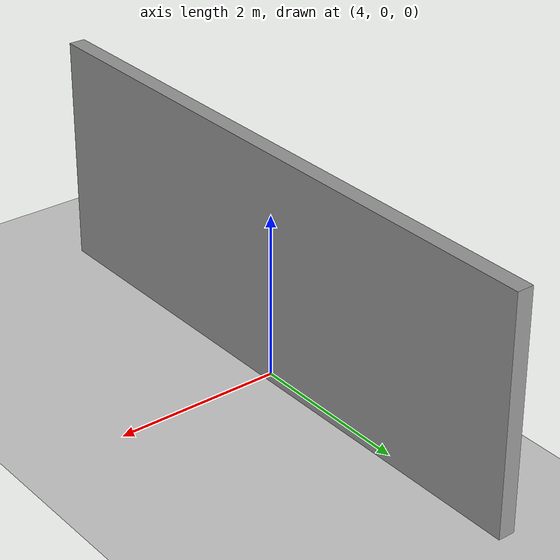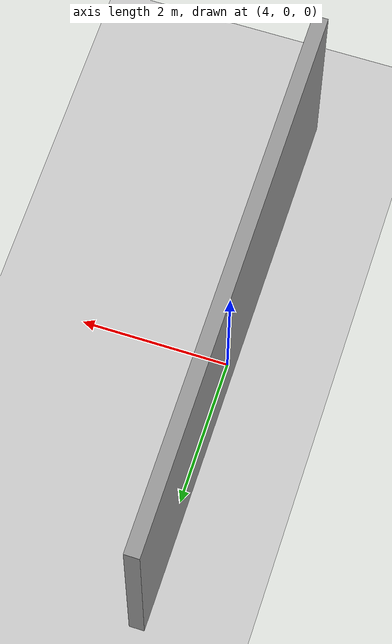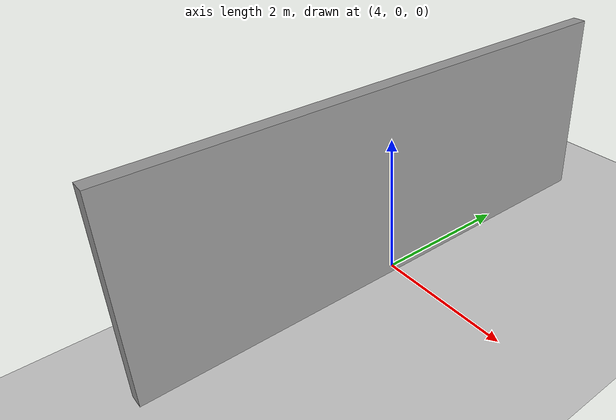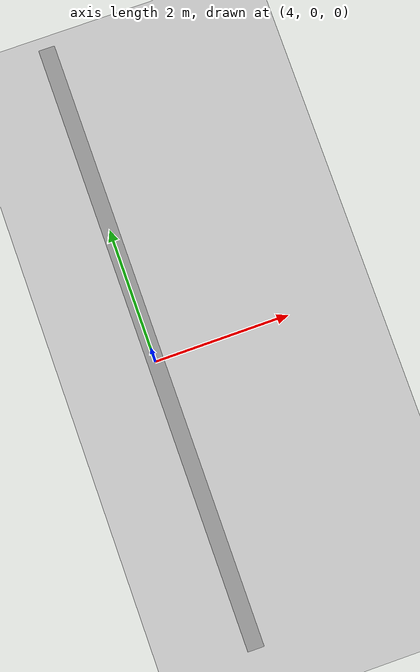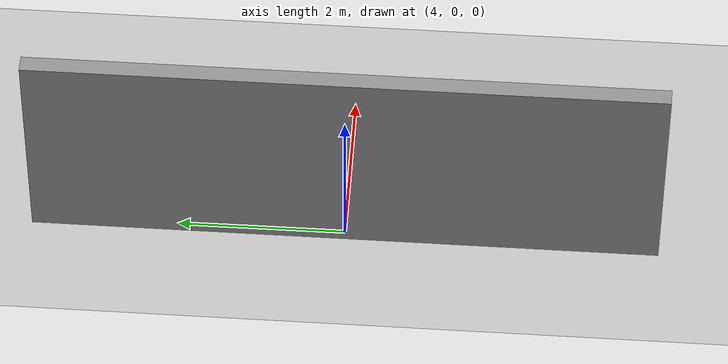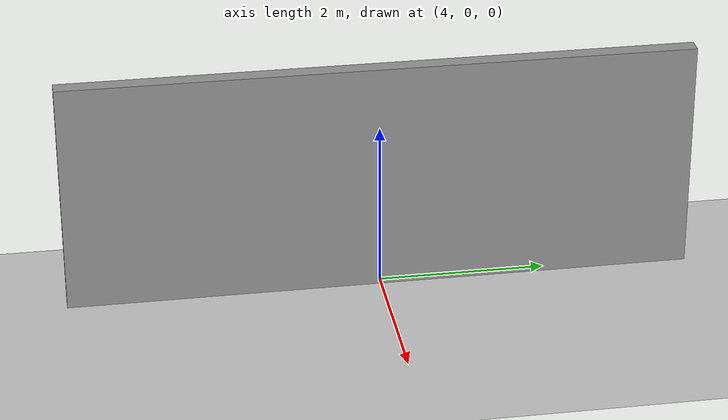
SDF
<sdf version="1.4">
 <world name="default">
  <light name="sun" type="directional">
   <pose>0 0 10 0 -0 0</pose>
   <diffuse>0.8 0.8 0.8 1</diffuse>
   <specular>0.2 0.2 0.2 1</specular>
   <attenuation>
    <range>1000</range>
    <constant>0.9</constant>
    <linear>0.01</linear>
    <quadratic>0.001</quadratic>
   </attenuation>
   <direction>-0.5 0.1 -0.9</direction>
  </light>
  <model name="ground_plane">
   <static>1</static>
   <link name="link">
    <collision name="collision">
     <geometry><plane><normal>0 0 1</normal><size>100 100</size></plane></geometry>
     <surface><friction><ode><mu>100</mu><mu2>50</mu2></ode></friction></surface>
    </collision>
    <visual name="visual">
     <cast_shadows>0</cast_shadows>
     <geometry><plane><normal>0 0 1</normal><size>100 100</size></plane></geometry>
     <material>
      <script><uri>file://media/materials/scripts/gazebo.material</uri><name>Gazebo/Grey</name></script>
     </material>
    </visual>
    <velocity_decay><linear>0</linear><angular>0</angular></velocity_decay>
   </link>
  </model>
  <include><uri>model:///grey_wall</uri><pose>4 0 0 0 0 1.5708</pose></include>
  <physics type="ode">
   <max_step_size>0.001</max_step_size>
   <real_time_factor>1</real_time_factor>
   <real_time_update_rate>1000</real_time_update_rate>
   <gravity>0 0 -9.8</gravity>
  </physics>
  <scene><ambient>0.4 0.4 0.4 1</ambient><background>0.7 0.7 0.7 1</background><shadows>1</shadows></scene>
 </world>
</sdf>

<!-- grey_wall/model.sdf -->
<sdf version="1.5">
  <model name="grey_wall">
    <static>true</static>
    <link name="link">
      <pose>0 0 1.4 0 0 0</pose>
      <collision name="collision">
        <geometry>
          <box>
            <size>7.5 0.2 2.8</size>
          </box>
        </geometry>
      </collision>
      <visual name="visual">
        <cast_shadows>false</cast_shadows>
        <geometry>
          <box>
            <size>7.5 0.2 2.8</size>
          </box>
        </geometry>
        <material>
          <script>
            <uri>model://../model_source/models/grey_wall/materials/scripts</uri>
            <uri>model://../model_source/models/grey_wall/materials/textures</uri>
            <name>vrc/grey_wall</name>
          </script>
        </material>
      </visual>
    </link>
  </model>
</sdf>
